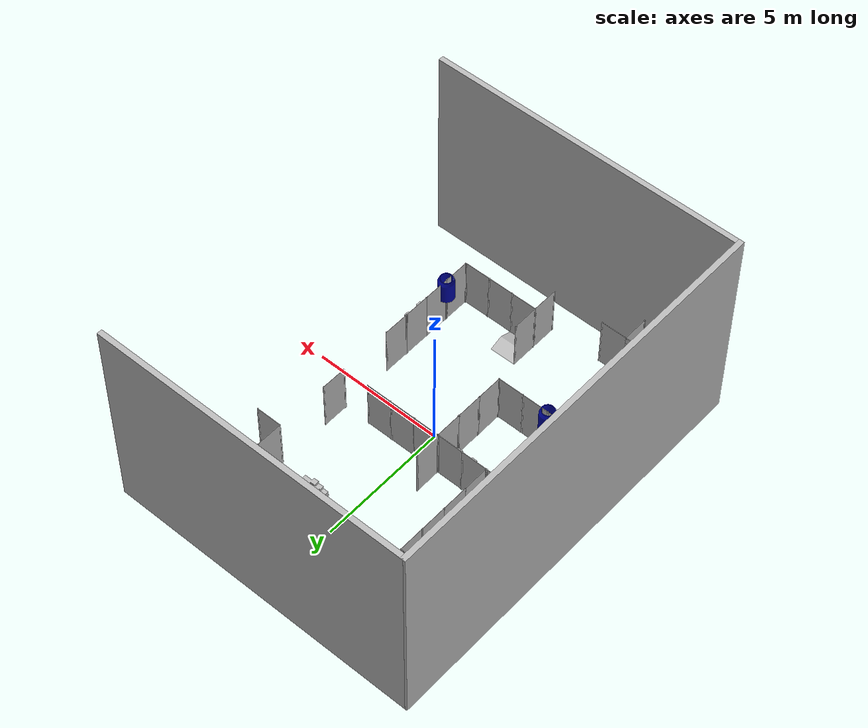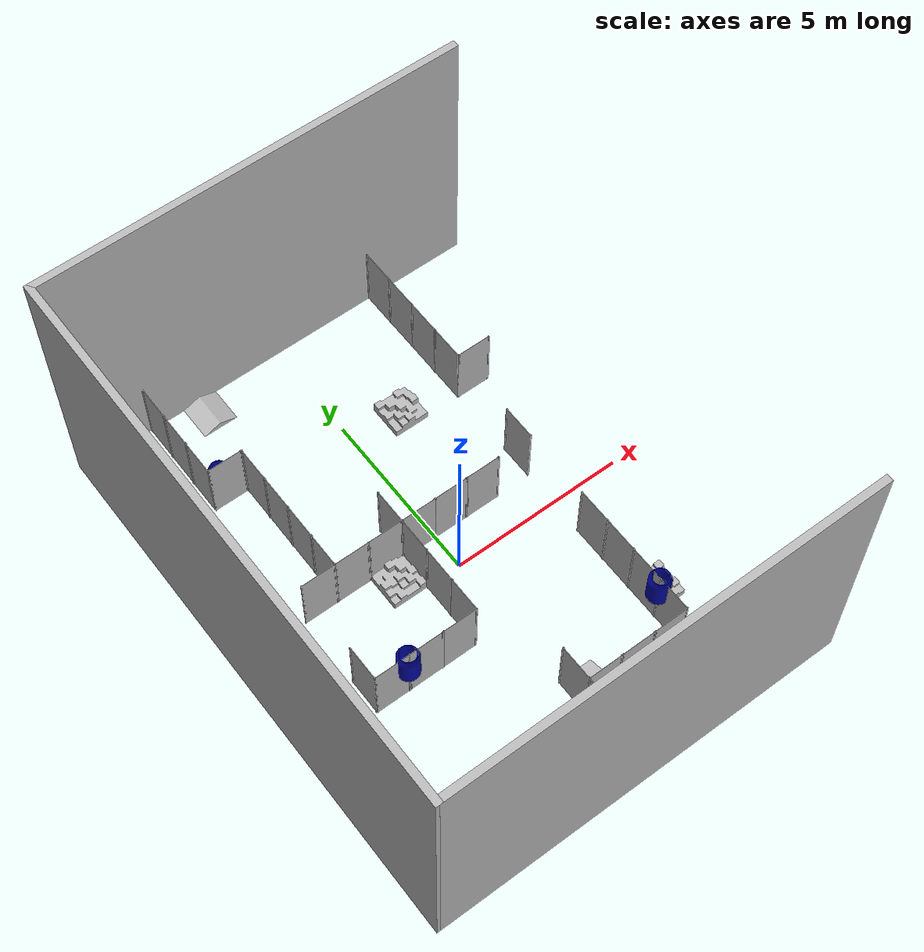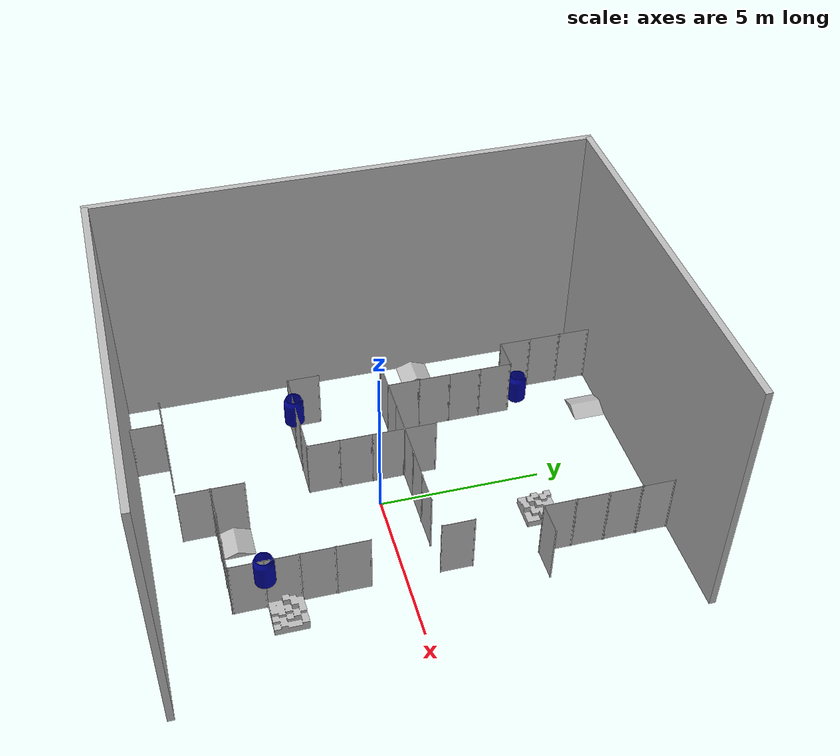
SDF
<sdf version="1.4">
 <world name="arena_4">
  <scene><ambient>0.5 0.5 0.5 1</ambient><background>0.5 0.5 0.5 1</background><shadows>false</shadows></scene>
  <physics type="ode">
   <gravity>0 0 -9.81</gravity>
   <ode>
    <solver><type>quick</type><iters>10</iters><sor>1.3</sor></solver>
    <constraints>
     <cfm>0.0</cfm>
     <erp>0.2</erp>
     <contact_max_correcting_vel>100.0</contact_max_correcting_vel>
     <contact_surface_layer>0.001</contact_surface_layer>
    </constraints>
   </ode>
   <real_time_update_rate>1000</real_time_update_rate>
   <max_step_size>0.001</max_step_size>
  </physics>
  <light name="directional_light_1" type="directional">
   <cast_shadows>false</cast_shadows>
   <pose>0 0 30 0.1 0.1 0</pose>
   <diffuse>1.0 1.0 1.0 1</diffuse>
   <specular>.1 .1 .1 1</specular>
   <attenuation><range>300</range></attenuation>
   <direction>0.1 0.1 -1</direction>
  </light>
  <model name="rightsidewall">
   <pose>0 8.1 4  0 0 0</pose>
   <static>true</static>
   <link name="body">
    <collision name="collision">
     <geometry><mesh><uri>file://blackwall.dae</uri><scale>1 1 1</scale></mesh></geometry>
    </collision>
    <visual name="visual">
     <geometry><mesh><uri>file://blackwall.dae</uri><scale>1 1 1</scale></mesh></geometry>
    </visual>
   </link>
  </model>
  <model name="backsidewall">
   <pose>-6 0.5 4  0 0 1.57</pose>
   <static>true</static>
   <link name="body">
    <collision name="collision">
     <geometry><mesh><uri>file://blackwall.dae</uri><scale>1.2833 1 1</scale></mesh></geometry>
    </collision>
    <visual name="visual">
     <geometry><mesh><uri>file://blackwall.dae</uri><scale>1.2833 1 1</scale></mesh></geometry>
    </visual>
   </link>
  </model>
  <model name="leftsidewall">
   <pose>0 -7.1 4  0 0 0</pose>
   <static>true</static>
   <link name="body">
    <collision name="collision">
     <geometry><mesh><uri>file://blackwall.dae</uri><scale>1 1 1</scale></mesh></geometry>
    </collision>
    <visual name="visual">
     <geometry><mesh><uri>file://blackwall.dae</uri><scale>1 1 1</scale></mesh></geometry>
    </visual>
   </link>
  </model>
  <model name="barrel.001">
   <pose>-3.490981101989746 5.4643073081970215 9.53674295089968e-09  0.0 0.0 0.0</pose>
   <static>true</static>
   <link name="body">
    <collision name="collision">
     <geometry><mesh><uri>file://barrel.dae</uri><scale>1 1 1</scale></mesh></geometry>
    </collision>
    <visual name="visual">
     <geometry><mesh><uri>file://barrel.dae</uri><scale>1 1 1</scale></mesh></geometry>
    </visual>
   </link>
  </model>
  <model name="barrel.002">
   <pose>-3.0279715061187744 -1.9930074214935303 1.1100000143051147  0.0 -0.0 1.570796251296997</pose>
   <static>true</static>
   <link name="body">
    <collision name="collision">
     <geometry><mesh><uri>file://barrel.dae</uri><scale>1 1 1</scale></mesh></geometry>
    </collision>
    <visual name="visual">
     <geometry><mesh><uri>file://barrel.dae</uri><scale>1 1 1</scale></mesh></geometry>
    </visual>
   </link>
  </model>
  <model name="barrel">
   <pose>3.0 -4.0 1.1100000143051147  0.0 0.0 0.0</pose>
   <static>true</static>
   <link name="body">
    <collision name="collision">
     <geometry><mesh><uri>file://barrel.dae</uri><scale>1 1 1</scale></mesh></geometry>
    </collision>
    <visual name="visual">
     <geometry><mesh><uri>file://barrel.dae</uri><scale>1 1 1</scale></mesh></geometry>
    </visual>
   </link>
  </model>
  <model name="ramp.001">
   <pose>-2.5 7.5 2.980461033530446e-08  0.0 -0.0 3.141592502593994</pose>
   <static>true</static>
   <link name="body">
    <collision name="collision">
     <geometry><mesh><uri>file://ramp.dae</uri><scale>1 1 1</scale></mesh></geometry>
    </collision>
    <visual name="visual">
     <geometry><mesh><uri>file://ramp.dae</uri><scale>1 1 1</scale></mesh></geometry>
    </visual>
   </link>
  </model>
  <model name="ramp">
   <pose>-5.5 2.5 2.980461033530446e-08  0.0 -0.0 1.570796251296997</pose>
   <static>true</static>
   <link name="body">
    <collision name="collision">
     <geometry><mesh><uri>file://ramp.dae</uri><scale>1 1 1</scale></mesh></geometry>
    </collision>
    <visual name="visual">
     <geometry><mesh><uri>file://ramp.dae</uri><scale>1 1 1</scale></mesh></geometry>
    </visual>
   </link>
  </model>
  <model name="ramp.002">
   <pose>0.5 -4.5 2.980461033530446e-08  0.0 -0.0 1.570796251296997</pose>
   <static>true</static>
   <link name="body">
    <collision name="collision">
     <geometry><mesh><uri>file://ramp.dae</uri><scale>1 1 1</scale></mesh></geometry>
    </collision>
    <visual name="visual">
     <geometry><mesh><uri>file://ramp.dae</uri><scale>1 1 1</scale></mesh></geometry>
    </visual>
   </link>
  </model>
  <model name="sidewall.001">
   <pose>3.0 4.5 0.0  0.0 -0.0 3.141592502593994</pose>
   <static>true</static>
   <link name="body">
    <collision name="collision">
     <geometry><mesh><uri>file://sidewall.dae</uri><scale>1 1 1</scale></mesh></geometry>
    </collision>
    <visual name="visual">
     <geometry><mesh><uri>file://sidewall.dae</uri><scale>1 1 1</scale></mesh></geometry>
    </visual>
   </link>
  </model>
  <model name="sidewall.002">
   <pose>3.0 5.5 0.0  0.0 -0.0 3.141592502593994</pose>
   <static>true</static>
   <link name="body">
    <collision name="collision">
     <geometry><mesh><uri>file://sidewall.dae</uri><scale>1 1 1</scale></mesh></geometry>
    </collision>
    <visual name="visual">
     <geometry><mesh><uri>file://sidewall.dae</uri><scale>1 1 1</scale></mesh></geometry>
    </visual>
   </link>
  </model>
  <model name="sidewall.003">
   <pose>3.0 6.5 0.0  0.0 -0.0 3.141592502593994</pose>
   <static>true</static>
   <link name="body">
    <collision name="collision">
     <geometry><mesh><uri>file://sidewall.dae</uri><scale>1 1 1</scale></mesh></geometry>
    </collision>
    <visual name="visual">
     <geometry><mesh><uri>file://sidewall.dae</uri><scale>1 1 1</scale></mesh></geometry>
    </visual>
   </link>
  </model>
  <model name="sidewall.004">
   <pose>3.0 7.5 0.0  0.0 -0.0 3.141592502593994</pose>
   <static>true</static>
   <link name="body">
    <collision name="collision">
     <geometry><mesh><uri>file://sidewall.dae</uri><scale>1 1 1</scale></mesh></geometry>
    </collision>
    <visual name="visual">
     <geometry><mesh><uri>file://sidewall.dae</uri><scale>1 1 1</scale></mesh></geometry>
    </visual>
   </link>
  </model>
  <model name="sidewall.005">
   <pose>0.5 -5.0 0.0  0.0 -0.0 1.570796251296997</pose>
   <static>true</static>
   <link name="body">
    <collision name="collision">
     <geometry><mesh><uri>file://sidewall.dae</uri><scale>1 1 1</scale></mesh></geometry>
    </collision>
    <visual name="visual">
     <geometry><mesh><uri>file://sidewall.dae</uri><scale>1 1 1</scale></mesh></geometry>
    </visual>
   </link>
  </model>
  <model name="sidewall.006">
   <pose>3.0 1.5 0.0  0.0 -0.0 3.141592502593994</pose>
   <static>true</static>
   <link name="body">
    <collision name="collision">
     <geometry><mesh><uri>file://sidewall.dae</uri><scale>1 1 1</scale></mesh></geometry>
    </collision>
    <visual name="visual">
     <geometry><mesh><uri>file://sidewall.dae</uri><scale>1 1 1</scale></mesh></geometry>
    </visual>
   </link>
  </model>
  <model name="sidewall.007">
   <pose>1.5 -5.0 0.0  0.0 -0.0 1.570796251296997</pose>
   <static>true</static>
   <link name="body">
    <collision name="collision">
     <geometry><mesh><uri>file://sidewall.dae</uri><scale>1 1 1</scale></mesh></geometry>
    </collision>
    <visual name="visual">
     <geometry><mesh><uri>file://sidewall.dae</uri><scale>1 1 1</scale></mesh></geometry>
    </visual>
   </link>
  </model>
  <model name="sidewall.008">
   <pose>2.5 -5.0 0.0  0.0 -0.0 1.570796251296997</pose>
   <static>true</static>
   <link name="body">
    <collision name="collision">
     <geometry><mesh><uri>file://sidewall.dae</uri><scale>1 1 1</scale></mesh></geometry>
    </collision>
    <visual name="visual">
     <geometry><mesh><uri>file://sidewall.dae</uri><scale>1 1 1</scale></mesh></geometry>
    </visual>
   </link>
  </model>
  <model name="sidewall.009">
   <pose>-3.0 4.5 0.0  0.0 -0.0 3.141592502593994</pose>
   <static>true</static>
   <link name="body">
    <collision name="collision">
     <geometry><mesh><uri>file://sidewall.dae</uri><scale>1 1 1</scale></mesh></geometry>
    </collision>
    <visual name="visual">
     <geometry><mesh><uri>file://sidewall.dae</uri><scale>1 1 1</scale></mesh></geometry>
    </visual>
   </link>
  </model>
  <model name="sidewall.010">
   <pose>-3.0 3.5 0.0  0.0 -0.0 3.141592502593994</pose>
   <static>true</static>
   <link name="body">
    <collision name="collision">
     <geometry><mesh><uri>file://sidewall.dae</uri><scale>1 1 1</scale></mesh></geometry>
    </collision>
    <visual name="visual">
     <geometry><mesh><uri>file://sidewall.dae</uri><scale>1 1 1</scale></mesh></geometry>
    </visual>
   </link>
  </model>
  <model name="sidewall.011">
   <pose>-3.0 2.5 0.0  0.0 -0.0 3.141592502593994</pose>
   <static>true</static>
   <link name="body">
    <collision name="collision">
     <geometry><mesh><uri>file://sidewall.dae</uri><scale>1 1 1</scale></mesh></geometry>
    </collision>
    <visual name="visual">
     <geometry><mesh><uri>file://sidewall.dae</uri><scale>1 1 1</scale></mesh></geometry>
    </visual>
   </link>
  </model>
  <model name="sidewall.012">
   <pose>-3.5 5.0 0.0  0.0 -0.0 1.570796251296997</pose>
   <static>true</static>
   <link name="body">
    <collision name="collision">
     <geometry><mesh><uri>file://sidewall.dae</uri><scale>1 1 1</scale></mesh></geometry>
    </collision>
    <visual name="visual">
     <geometry><mesh><uri>file://sidewall.dae</uri><scale>1 1 1</scale></mesh></geometry>
    </visual>
   </link>
  </model>
  <model name="sidewall.013">
   <pose>-3.0 1.5 0.0  0.0 0.0 0.0</pose>
   <static>true</static>
   <link name="body">
    <collision name="collision">
     <geometry><mesh><uri>file://sidewall.dae</uri><scale>1 1 1</scale></mesh></geometry>
    </collision>
    <visual name="visual">
     <geometry><mesh><uri>file://sidewall.dae</uri><scale>1 1 1</scale></mesh></geometry>
    </visual>
   </link>
  </model>
  <model name="sidewall.014">
   <pose>-2.5 1.0 0.0  0.0 -0.0 1.570796251296997</pose>
   <static>true</static>
   <link name="body">
    <collision name="collision">
     <geometry><mesh><uri>file://sidewall.dae</uri><scale>1 1 1</scale></mesh></geometry>
    </collision>
    <visual name="visual">
     <geometry><mesh><uri>file://sidewall.dae</uri><scale>1 1 1</scale></mesh></geometry>
    </visual>
   </link>
  </model>
  <model name="sidewall.015">
   <pose>-0.5 1.0 0.0  0.0 -0.0 1.570796251296997</pose>
   <static>true</static>
   <link name="body">
    <collision name="collision">
     <geometry><mesh><uri>file://sidewall.dae</uri><scale>1 1 1</scale></mesh></geometry>
    </collision>
    <visual name="visual">
     <geometry><mesh><uri>file://sidewall.dae</uri><scale>1 1 1</scale></mesh></geometry>
    </visual>
   </link>
  </model>
  <model name="sidewall.016">
   <pose>-4.0 5.5 0.0  0.0 0.0 0.0</pose>
   <static>true</static>
   <link name="body">
    <collision name="collision">
     <geometry><mesh><uri>file://sidewall.dae</uri><scale>1 1 1</scale></mesh></geometry>
    </collision>
    <visual name="visual">
     <geometry><mesh><uri>file://sidewall.dae</uri><scale>1 1 1</scale></mesh></geometry>
    </visual>
   </link>
  </model>
  <model name="sidewall.017">
   <pose>-4.0 6.5 0.0  0.0 0.0 0.0</pose>
   <static>true</static>
   <link name="body">
    <collision name="collision">
     <geometry><mesh><uri>file://sidewall.dae</uri><scale>1 1 1</scale></mesh></geometry>
    </collision>
    <visual name="visual">
     <geometry><mesh><uri>file://sidewall.dae</uri><scale>1 1 1</scale></mesh></geometry>
    </visual>
   </link>
  </model>
  <model name="sidewall.018">
   <pose>-4.0 7.5 0.0  0.0 0.0 0.0</pose>
   <static>true</static>
   <link name="body">
    <collision name="collision">
     <geometry><mesh><uri>file://sidewall.dae</uri><scale>1 1 1</scale></mesh></geometry>
    </collision>
    <visual name="visual">
     <geometry><mesh><uri>file://sidewall.dae</uri><scale>1 1 1</scale></mesh></geometry>
    </visual>
   </link>
  </model>
  <model name="sidewall.019">
   <pose>-1.5 1.0 0.0  0.0 -0.0 1.570796251296997</pose>
   <static>true</static>
   <link name="body">
    <collision name="collision">
     <geometry><mesh><uri>file://sidewall.dae</uri><scale>1 1 1</scale></mesh></geometry>
    </collision>
    <visual name="visual">
     <geometry><mesh><uri>file://sidewall.dae</uri><scale>1 1 1</scale></mesh></geometry>
    </visual>
   </link>
  </model>
  <model name="sidewall.020">
   <pose>3.0 -1.5 0.0  0.0 0.0 0.0</pose>
   <static>true</static>
   <link name="body">
    <collision name="collision">
     <geometry><mesh><uri>file://sidewall.dae</uri><scale>1 1 1</scale></mesh></geometry>
    </collision>
    <visual name="visual">
     <geometry><mesh><uri>file://sidewall.dae</uri><scale>1 1 1</scale></mesh></geometry>
    </visual>
   </link>
  </model>
  <model name="sidewall.021">
   <pose>3.0 -2.5 0.0  0.0 0.0 0.0</pose>
   <static>true</static>
   <link name="body">
    <collision name="collision">
     <geometry><mesh><uri>file://sidewall.dae</uri><scale>1 1 1</scale></mesh></geometry>
    </collision>
    <visual name="visual">
     <geometry><mesh><uri>file://sidewall.dae</uri><scale>1 1 1</scale></mesh></geometry>
    </visual>
   </link>
  </model>
  <model name="sidewall.022">
   <pose>3.0 -3.5 0.0  0.0 0.0 0.0</pose>
   <static>true</static>
   <link name="body">
    <collision name="collision">
     <geometry><mesh><uri>file://sidewall.dae</uri><scale>1 1 1</scale></mesh></geometry>
    </collision>
    <visual name="visual">
     <geometry><mesh><uri>file://sidewall.dae</uri><scale>1 1 1</scale></mesh></geometry>
    </visual>
   </link>
  </model>
  <model name="sidewall.023">
   <pose>3.0 -4.5 0.0  0.0 0.0 0.0</pose>
   <static>true</static>
   <link name="body">
    <collision name="collision">
     <geometry><mesh><uri>file://sidewall.dae</uri><scale>1 1 1</scale></mesh></geometry>
    </collision>
    <visual name="visual">
     <geometry><mesh><uri>file://sidewall.dae</uri><scale>1 1 1</scale></mesh></geometry>
    </visual>
   </link>
  </model>
  <model name="sidewall.024">
   <pose>-1.0 1.5 0.0  0.0 0.0 0.0</pose>
   <static>true</static>
   <link name="body">
    <collision name="collision">
     <geometry><mesh><uri>file://sidewall.dae</uri><scale>1 1 1</scale></mesh></geometry>
    </collision>
    <visual name="visual">
     <geometry><mesh><uri>file://sidewall.dae</uri><scale>1 1 1</scale></mesh></geometry>
    </visual>
   </link>
  </model>
  <model name="sidewall.025">
   <pose>-1.0 -1.5 0.0  0.0 0.0 0.0</pose>
   <static>true</static>
   <link name="body">
    <collision name="collision">
     <geometry><mesh><uri>file://sidewall.dae</uri><scale>1 1 1</scale></mesh></geometry>
    </collision>
    <visual name="visual">
     <geometry><mesh><uri>file://sidewall.dae</uri><scale>1 1 1</scale></mesh></geometry>
    </visual>
   </link>
  </model>
  <model name="sidewall.026">
   <pose>-1.0 -0.5 0.0  0.0 0.0 0.0</pose>
   <static>true</static>
   <link name="body">
    <collision name="collision">
     <geometry><mesh><uri>file://sidewall.dae</uri><scale>1 1 1</scale></mesh></geometry>
    </collision>
    <visual name="visual">
     <geometry><mesh><uri>file://sidewall.dae</uri><scale>1 1 1</scale></mesh></geometry>
    </visual>
   </link>
  </model>
  <model name="sidewall.027">
   <pose>-1.0 0.5 0.0  0.0 0.0 0.0</pose>
   <static>true</static>
   <link name="body">
    <collision name="collision">
     <geometry><mesh><uri>file://sidewall.dae</uri><scale>1 1 1</scale></mesh></geometry>
    </collision>
    <visual name="visual">
     <geometry><mesh><uri>file://sidewall.dae</uri><scale>1 1 1</scale></mesh></geometry>
    </visual>
   </link>
  </model>
  <model name="sidewall.028">
   <pose>0.0 -4.5 0.0  0.0 0.0 0.0</pose>
   <static>true</static>
   <link name="body">
    <collision name="collision">
     <geometry><mesh><uri>file://sidewall.dae</uri><scale>1 1 1</scale></mesh></geometry>
    </collision>
    <visual name="visual">
     <geometry><mesh><uri>file://sidewall.dae</uri><scale>1 1 1</scale></mesh></geometry>
    </visual>
   </link>
  </model>
  <model name="sidewall.029">
   <pose>0.0 -5.5 0.0  0.0 0.0 0.0</pose>
   <static>true</static>
   <link name="body">
    <collision name="collision">
     <geometry><mesh><uri>file://sidewall.dae</uri><scale>1 1 1</scale></mesh></geometry>
    </collision>
    <visual name="visual">
     <geometry><mesh><uri>file://sidewall.dae</uri><scale>1 1 1</scale></mesh></geometry>
    </visual>
   </link>
  </model>
  <model name="sidewall.030">
   <pose>-3.0 -6.5 0.0  0.0 0.0 0.0</pose>
   <static>true</static>
   <link name="body">
    <collision name="collision">
     <geometry><mesh><uri>file://sidewall.dae</uri><scale>1 1 1</scale></mesh></geometry>
    </collision>
    <visual name="visual">
     <geometry><mesh><uri>file://sidewall.dae</uri><scale>1 1 1</scale></mesh></geometry>
    </visual>
   </link>
  </model>
  <model name="sidewall.031">
   <pose>-1.4930074214935303 -1.9930074214935303 0.0  0.0 -0.0 1.570796251296997</pose>
   <static>true</static>
   <link name="body">
    <collision name="collision">
     <geometry><mesh><uri>file://sidewall.dae</uri><scale>1 1 1</scale></mesh></geometry>
    </collision>
    <visual name="visual">
     <geometry><mesh><uri>file://sidewall.dae</uri><scale>1 1 1</scale></mesh></geometry>
    </visual>
   </link>
  </model>
  <model name="sidewall.032">
   <pose>-2.4930074214935303 -1.9930074214935303 0.0  0.0 -0.0 1.570796251296997</pose>
   <static>true</static>
   <link name="body">
    <collision name="collision">
     <geometry><mesh><uri>file://sidewall.dae</uri><scale>1 1 1</scale></mesh></geometry>
    </collision>
    <visual name="visual">
     <geometry><mesh><uri>file://sidewall.dae</uri><scale>1 1 1</scale></mesh></geometry>
    </visual>
   </link>
  </model>
  <model name="sidewall.033">
   <pose>-3.5 1.0 0.0  0.0 -0.0 1.570796251296997</pose>
   <static>true</static>
   <link name="body">
    <collision name="collision">
     <geometry><mesh><uri>file://sidewall.dae</uri><scale>1 1 1</scale></mesh></geometry>
    </collision>
    <visual name="visual">
     <geometry><mesh><uri>file://sidewall.dae</uri><scale>1 1 1</scale></mesh></geometry>
    </visual>
   </link>
  </model>
  <model name="sidewall.034">
   <pose>-2.5 -6.0 0.0  0.0 -0.0 1.570796251296997</pose>
   <static>true</static>
   <link name="body">
    <collision name="collision">
     <geometry><mesh><uri>file://sidewall.dae</uri><scale>1 1 1</scale></mesh></geometry>
    </collision>
    <visual name="visual">
     <geometry><mesh><uri>file://sidewall.dae</uri><scale>1 1 1</scale></mesh></geometry>
    </visual>
   </link>
  </model>
  <model name="sidewall.035">
   <pose>-3.9930076599121094 -1.4930074214935303 0.0  0.0 -0.0 3.141592502593994</pose>
   <static>true</static>
   <link name="body">
    <collision name="collision">
     <geometry><mesh><uri>file://sidewall.dae</uri><scale>1 1 1</scale></mesh></geometry>
    </collision>
    <visual name="visual">
     <geometry><mesh><uri>file://sidewall.dae</uri><scale>1 1 1</scale></mesh></geometry>
    </visual>
   </link>
  </model>
  <model name="sidewall.036">
   <pose>-3.4930074214935303 -1.9930074214935303 0.0  0.0 -0.0 1.570796251296997</pose>
   <static>true</static>
   <link name="body">
    <collision name="collision">
     <geometry><mesh><uri>file://sidewall.dae</uri><scale>1 1 1</scale></mesh></geometry>
    </collision>
    <visual name="visual">
     <geometry><mesh><uri>file://sidewall.dae</uri><scale>1 1 1</scale></mesh></geometry>
    </visual>
   </link>
  </model>
  <model name="sidewall.037">
   <pose>3.5 4.0 0.0  0.0 -0.0 1.570796251296997</pose>
   <static>true</static>
   <link name="body">
    <collision name="collision">
     <geometry><mesh><uri>file://sidewall.dae</uri><scale>1 1 1</scale></mesh></geometry>
    </collision>
    <visual name="visual">
     <geometry><mesh><uri>file://sidewall.dae</uri><scale>1 1 1</scale></mesh></geometry>
    </visual>
   </link>
  </model>
  <model name="sidewall.038">
   <pose>1.5 1.0 0.0  0.0 -0.0 1.570796251296997</pose>
   <static>true</static>
   <link name="body">
    <collision name="collision">
     <geometry><mesh><uri>file://sidewall.dae</uri><scale>1 1 1</scale></mesh></geometry>
    </collision>
    <visual name="visual">
     <geometry><mesh><uri>file://sidewall.dae</uri><scale>1 1 1</scale></mesh></geometry>
    </visual>
   </link>
  </model>
  <model name="sidewall">
   <pose>0.5 1.0 0.0  0.0 -0.0 1.570796251296997</pose>
   <static>true</static>
   <link name="body">
    <collision name="collision">
     <geometry><mesh><uri>file://sidewall.dae</uri><scale>1 1 1</scale></mesh></geometry>
    </collision>
    <visual name="visual">
     <geometry><mesh><uri>file://sidewall.dae</uri><scale>1 1 1</scale></mesh></geometry>
    </visual>
   </link>
  </model>
  <model name="sidewall.039">
   <pose>-3.5 -6.0 0.0  0.0 -0.0 1.570796251296997</pose>
   <static>true</static>
   <link name="body">
    <collision name="collision">
     <geometry><mesh><uri>file://sidewall.dae</uri><scale>1 1 1</scale></mesh></geometry>
    </collision>
    <visual name="visual">
     <geometry><mesh><uri>file://sidewall.dae</uri><scale>1 1 1</scale></mesh></geometry>
    </visual>
   </link>
  </model>
  <model name="uneven_surface">
   <pose>3.5 -3.5 -0.005118498578667641  0.0 -0.0 1.570796251296997</pose>
   <static>true</static>
   <link name="body">
    <collision name="collision">
     <geometry><mesh><uri>file://uneven_surface.dae</uri><scale>1 1 1</scale></mesh></geometry>
    </collision>
    <visual name="visual">
     <geometry><mesh><uri>file://uneven_surface.dae</uri><scale>1 1 1</scale></mesh></geometry>
    </visual>
   </link>
  </model>
  <model name="uneven_surface.001">
   <pose>-1.5 0.5 5.656719093138918e-09  0.0 0.0 0.0</pose>
   <static>true</static>
   <link name="body">
    <collision name="collision">
     <geometry><mesh><uri>file://uneven_surface.dae</uri><scale>1 1 1</scale></mesh></geometry>
    </collision>
    <visual name="visual">
     <geometry><mesh><uri>file://uneven_surface.dae</uri><scale>1 1 1</scale></mesh></geometry>
    </visual>
   </link>
  </model>
  <model name="uneven_surface.002">
   <pose>1.5 4.5 5.656719093138918e-09  0.0 -0.0 3.141592502593994</pose>
   <static>true</static>
   <link name="body">
    <collision name="collision">
     <geometry><mesh><uri>file://uneven_surface.dae</uri><scale>1 1 1</scale></mesh></geometry>
    </collision>
    <visual name="visual">
     <geometry><mesh><uri>file://uneven_surface.dae</uri><scale>1 1 1</scale></mesh></geometry>
    </visual>
   </link>
  </model>
 </world>
</sdf>
